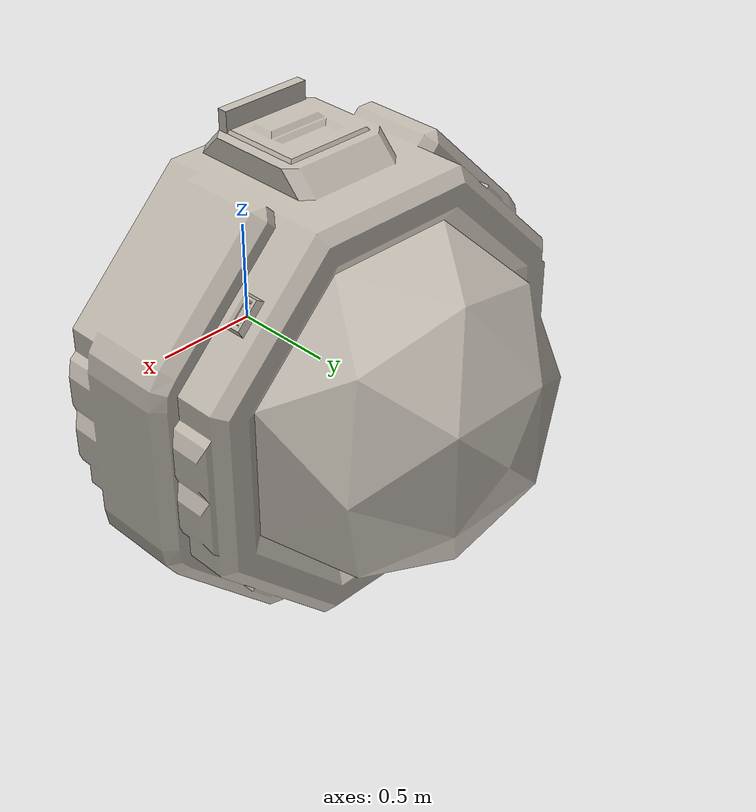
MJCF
<mujoco model="basemodule_E">
  <default>
    <default class="visual">
      <geom group="2" type="mesh" contype="0" conaffinity="0" />
    </default>
    <default class="collision">
      <geom group="3" type="mesh" />
    </default>
  </default>
  <asset>
    <texture type="2d" name="basemodule_E_spacebits_texture" file="spacebits_texture.png" />
    <material name="basemodule_E_spacebits_texture" texture="basemodule_E_spacebits_texture" specular="0.50196078" shininess="0.15999998099999999" />
    <mesh file="basemodule_E.obj" name="basemodule_E_basemodule_E" />
  </asset>
  <worldbody>
    <body name="basemodule_E">
      <geom material="basemodule_E_spacebits_texture" mesh="basemodule_E_basemodule_E" class="visual" />
      <geom mesh="basemodule_E_basemodule_E" class="collision" />
    </body>
  </worldbody>
</mujoco>
